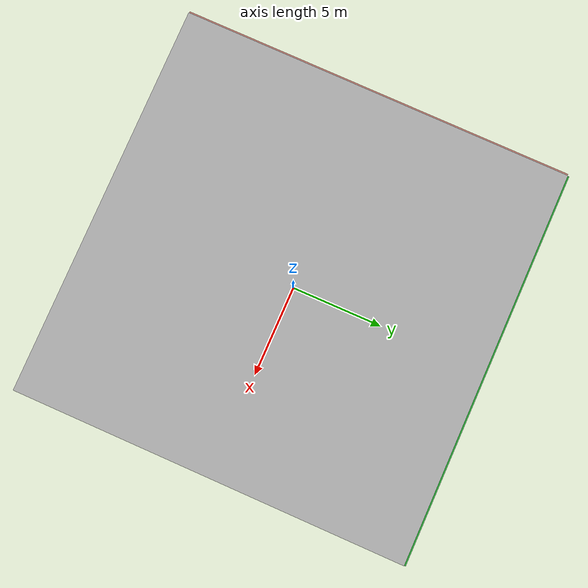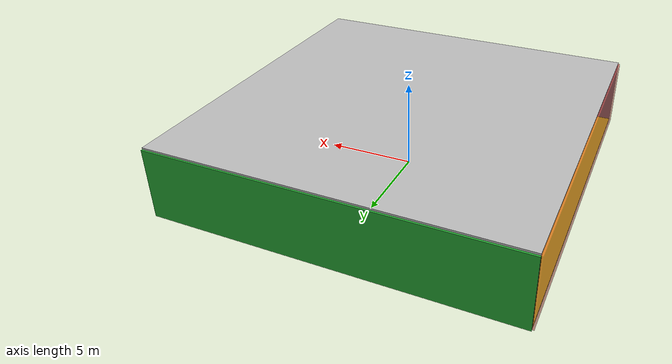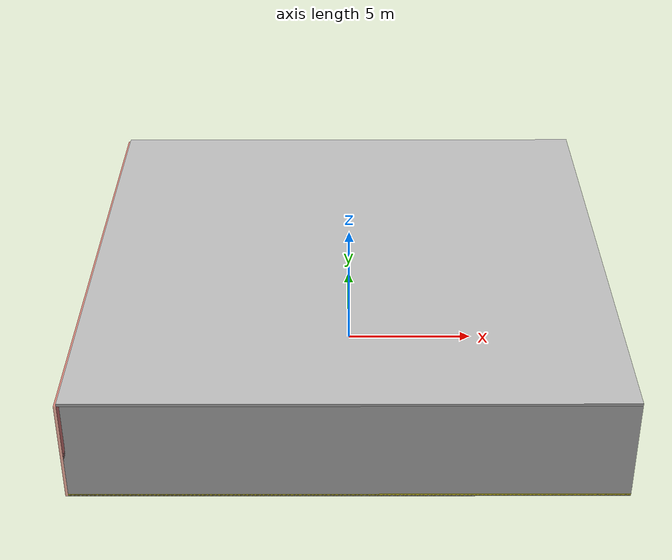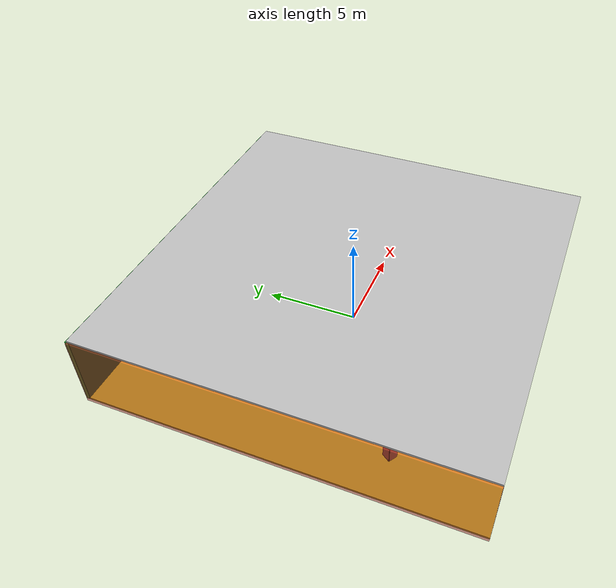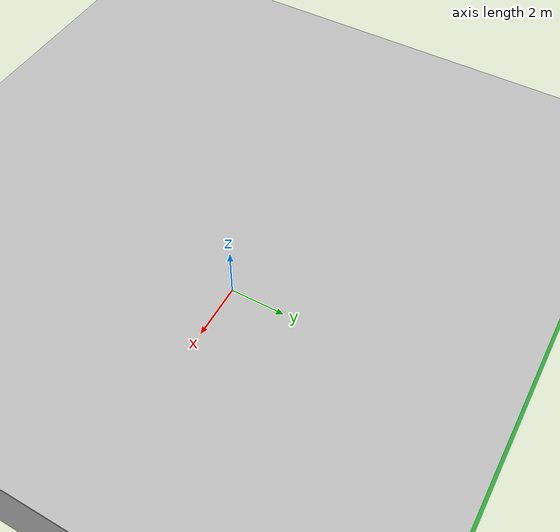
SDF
<sdf version="1.4">
 <world name="default">
  <physics type="ode">
   <max_step_size>0.001</max_step_size>
   <real_time_factor>1</real_time_factor>
   <real_time_update_rate>1000</real_time_update_rate>
   <gravity>0 0 -9.8</gravity>
  </physics>
  <scene><ambient>0.4 0.4 0.4 1</ambient><background>0.7 0.7 0.7 1</background><shadows>1</shadows></scene>
  <model name="Surrounding">
   <static>1</static>
   <link name="Ceiling">
    <collision name="Ceiling_Collision"><geometry><box><size>20 20 0.1</size></box></geometry></collision>
    <visual name="Ceiling_Visual">
     <geometry><box><size>20 20 0.1</size></box></geometry>
     <material>
      <script><uri>file://media/materials/scripts/gazebo.material</uri><name>Gazebo/JointAnchor</name></script>
     </material>
    </visual>
    <pose>0 0 4.05 0 0 0</pose>
   </link>
   <link name="Wall_South">
    <collision name="Wall_South_Collision">
     <geometry><box><size>20 0 4</size></box></geometry>
     <pose>0 0 2 0 -0 0</pose>
    </collision>
    <visual name="Wall_South_Visual">
     <pose>0 0 2 0 -0 0</pose>
     <geometry><box><size>20 0 4</size></box></geometry>
     <material>
      <script><uri>file://media/materials/scripts/gazebo.material</uri><name>Gazebo/Pioneer2Body</name></script>
     </material>
    </visual>
    <velocity_decay><linear>0</linear><angular>0</angular></velocity_decay>
    <pose>0 -10 0 0 -0 0</pose>
   </link>
   <link name="Wall_East">
    <collision name="Wall_21_Collision">
     <geometry><box><size>20 0 4</size></box></geometry>
     <pose>0 0 2 0 -0 0</pose>
    </collision>
    <visual name="Wall_21_Visual">
     <pose>0 0 2 0 -0 0</pose>
     <geometry><box><size>20 0 4</size></box></geometry>
     <material>
      <script><uri>file://media/materials/scripts/gazebo.material</uri><name>Gazebo/PioneerBody</name></script>
     </material>
    </visual>
    <velocity_decay><linear>0</linear><angular>0</angular></velocity_decay>
    <pose>10 0 0 0 -0 1.5708</pose>
   </link>
   <link name="Wall_North">
    <collision name="Wall_22_Collision">
     <geometry><box><size>20 0.2 4</size></box></geometry>
     <pose>0 0 2 0 -0 0</pose>
    </collision>
    <visual name="Wall_22_Visual">
     <pose>0 0 2 0 -0 0</pose>
     <geometry><box><size>20 0.2 4</size></box></geometry>
     <material>
      <script><uri>file://media/materials/scripts/gazebo.material</uri><name>Gazebo/GreenGlow</name></script>
     </material>
    </visual>
    <velocity_decay><linear>0</linear><angular>0</angular></velocity_decay>
    <pose>0 10 0 0 -0 0</pose>
   </link>
   <link name="Wall_West">
    <collision name="Wall_23_Collision">
     <geometry><box><size>20 0.2 4</size></box></geometry>
     <pose>0 0 2 0 -0 0</pose>
    </collision>
    <visual name="Wall_23_Visual">
     <pose>0 0 2 0 -0 0</pose>
     <geometry><box><size>20 0.2 4</size></box></geometry>
     <material>
      <script><uri>file://media/materials/scripts/gazebo.material</uri><name>Gazebo/RedTransparent</name></script>
     </material>
    </visual>
    <velocity_decay><linear>0</linear><angular>0</angular></velocity_decay>
    <pose>-10 0 0 0 0 -1.5708</pose>
   </link>
   <link name="Ground_link">
    <collision name="collision">
     <pose>0 0 .05 0 -0 0</pose>
     <geometry><box><size>20 20 0.1</size></box></geometry>
    </collision>
    <visual name="visual">
     <pose>0 0 .05 0 -0 0</pose>
     <geometry><box><size>20 20 0.1</size></box></geometry>
     <material>
      <script><uri>file://media/materials/scripts/gazebo.material</uri><name>Gazebo/Yellow</name></script>
     </material>
    </visual>
   </link>
   <static>1</static>
  </model>
  <spherical_coordinates>
   <surface_model>EARTH_WGS84</surface_model>
   <latitude_deg>0</latitude_deg>
   <longitude_deg>0</longitude_deg>
   <elevation>0</elevation>
   <heading_deg>0</heading_deg>
  </spherical_coordinates>
  <light name="lightball_0" type="diffuse">
   <diffuse>0.8 0.8 0.8 1</diffuse>
   <specular>0.2 0.2 0.2 1</specular>
   <attenuation>
    <range>100</range>
    <constant>0.7</constant>
    <linear>0.01</linear>
    <quadratic>0.001</quadratic>
   </attenuation>
   <direction>-0.5 0.1 -0.9</direction>
   <pose>2.163719059 -1.81493837682 0.697799438778 0 0 0</pose>
  </light>
  <light name="lightball_1" type="diffuse">
   <diffuse>0.8 0.8 0.8 1</diffuse>
   <specular>0.2 0.2 0.2 1</specular>
   <attenuation>
    <range>100</range>
    <constant>0.7</constant>
    <linear>0.01</linear>
    <quadratic>0.001</quadratic>
   </attenuation>
   <direction>-0.5 0.1 -0.9</direction>
   <pose>-7.39877486458 7.86696672139 2.11581130995 0 0 0</pose>
  </light>
  <light name="lightball_2" type="diffuse">
   <diffuse>0.8 0.8 0.8 1</diffuse>
   <specular>0.2 0.2 0.2 1</specular>
   <attenuation>
    <range>100</range>
    <constant>0.7</constant>
    <linear>0.01</linear>
    <quadratic>0.001</quadratic>
   </attenuation>
   <direction>-0.5 0.1 -0.9</direction>
   <pose>5.09041753415 9.66797379669 3.73896281615 0 0 0</pose>
  </light>
  <include><uri>model://cabinet</uri><pose>-7.73099094659 -4.83182520505 0 0 0 2.55663547834</pose></include>
  <include>
   <uri>model://textured_shapes</uri>
   <pose>-1.29040325138 1.18842055668 0 0 0 0.77644273493</pose>
  </include>
  <include><uri>model://cabinet</uri><pose>1.13102587884 4.31768997471 0 0 0 2.46978186635</pose></include>
  <include>
   <uri>model://construction_cone</uri>
   <pose>6.91536444854 0.870061667883 0 0 0 2.97372963649</pose>
  </include>
 </world>
</sdf>

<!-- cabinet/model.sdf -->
<sdf version="1.5">
  <model name="cabinet">
    <static>true</static>
    <link name="cabinet_bottom_plate">
      <inertial>
        <pose>0 0 -1 0 0 0</pose>
        <inertia>
          <ixx>2.050000</ixx>
          <ixy>0</ixy>
          <ixz>0</ixz>
          <iyy>2.050000</iyy>
          <iyz>0</iyz>
          <izz>2.050000</izz>
        </inertia>
        <mass>25.000000</mass>
      </inertial>
      <collision name="cabinet_bottom_plate_geom">
        <pose>0 0 0.010000 0 0 0</pose>
        <geometry>
          <box>
            <size>0.450000 0.450000 0.020000</size>
          </box>
        </geometry>
      </collision>
      <visual name="cabinet_bottom_plate_geom_visual">
        <pose>0 0 0.010000 0 0 0</pose>
        <geometry>
          <box>
            <size>0.450000 0.450000 0.020000</size>
          </box>
        </geometry>
        <material>
          <script>
            <uri>model://media/materials/scripts/gazebo.material</uri>
            <name>Gazebo/Wood</name>
          </script>
        </material>
      </visual>
      <collision name="cabinet_bottom_plate_geom_cabinet_back_plate">
        <pose>0.235000 0 0.510000 0 0 0</pose>
        <geometry>
          <box>
            <size>0.020000 0.450000 1.020000</size>
          </box>
        </geometry>
      </collision>
      <visual name="cabinet_bottom_plate_geom_cabinet_back_plate_visual">
        <pose>0.235000 0 0.510000 0 0 0</pose>
        <geometry>
          <box>
            <size>0.020000 0.450000 1.020000</size>
          </box>
        </geometry>
        <material>
          <script>
            <uri>model://media/materials/scripts/gazebo.material</uri>
            <name>Gazebo/Wood</name>
          </script>
        </material>
      </visual>
      <collision name="cabinet_bottom_plate_geom_cabinet_left_plate">
        <pose>0 0.235000 0.510000 0 0 0</pose>
        <geometry>
          <box>
            <size>0.450000 0.020000 1.020000</size>
          </box>
        </geometry>
      </collision>
      <visual name="cabinet_bottom_plate_geom_cabinet_left_plate_visual">
        <pose>0 0.235000 0.510000 0 0 0</pose>
        <geometry>
          <box>
            <size>0.450000 0.020000 1.020000</size>
          </box>
        </geometry>
        <material>
          <script>
            <uri>model://media/materials/scripts/gazebo.material</uri>
            <name>Gazebo/Wood</name>
          </script>
        </material>
      </visual>
      <collision name="cabinet_bottom_plate_geom_cabinet_middle_plate">
        <pose>0 0 0.510000 0 0 0</pose>
        <geometry>
          <box>
            <size>0.450000 0.450000 0.020000</size>
          </box>
        </geometry>
      </collision>
      <visual name="cabinet_bottom_plate_geom_cabinet_middle_plate_visual">
        <pose>0 0 0.510000 0 0 0</pose>
        <geometry>
          <box>
            <size>0.450000 0.450000 0.020000</size>
          </box>
        </geometry>
        <material>
          <script>
            <uri>model://media/materials/scripts/gazebo.material</uri>
            <name>Gazebo/Wood</name>
          </script>
        </material>
      </visual>
      <collision name="cabinet_bottom_plate_geom_cabinet_right_plate">
        <pose>0 -0.235000 0.510000 0 0 0</pose>
        <geometry>
          <box>
            <size>0.450000 0.020000 1.020000</size>
          </box>
        </geometry>
      </collision>
      <visual name="cabinet_bottom_plate_geom_cabinet_right_plate_visual">
        <pose>0 -0.235000 0.510000 0 0 0</pose>
        <geometry>
          <box>
            <size>0.450000 0.020000 1.020000</size>
          </box>
        </geometry>
        <material>
          <script>
            <uri>model://media/materials/scripts/gazebo.material</uri>
            <name>Gazebo/Wood</name>
          </script>
        </material>
      </visual>
      <collision name="cabinet_bottom_plate_geom_cabinet_top_plate">
        <pose>0 0 1.010000 0 0 0</pose>
        <geometry>
          <box>
            <size>0.450000 0.450000 0.020000</size>
          </box>
        </geometry>
      </collision>
      <visual name="cabinet_bottom_plate_geom_cabinet_top_plate_visual">
        <pose>0 0 1.010000 0 0 0</pose>
        <geometry>
          <box>
            <size>0.450000 0.450000 0.020000</size>
          </box>
        </geometry>
        <material>
          <script>
            <uri>model://media/materials/scripts/gazebo.material</uri>
            <name>Gazebo/Wood</name>
          </script>
        </material>
      </visual>
    </link>
  </model>
</sdf>

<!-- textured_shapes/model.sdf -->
<sdf version="1.6">
  <model name="textured_shapes">
    <pose>0 0 0.5 0 0 0</pose>
    <link name="box">
      <pose>0 -1.5 0 0 0 0</pose>
      <collision name="collision">
        <geometry>
          <box>
            <size>1 1 1</size>
          </box>
        </geometry>
      </collision>
      <visual name="visual">
        <geometry>
          <box>
            <size>1 1 1</size>
          </box>
        </geometry>
        <material>
          <script>
            <uri>model://../model_source/models/textured_shapes/materials/scripts</uri>
            <uri>model://../model_source/models/textured_shapes/materials/textures</uri>
            <name>TexturedShape/Squares</name>
          </script>
        </material>
      </visual>
    </link>
    <link name="sphere">
      <collision name="collision">
        <geometry>
          <sphere>
            <radius>0.5</radius>
          </sphere>
        </geometry>
      </collision>
      <visual name="visual">
        <geometry>
          <sphere>
            <radius>0.5</radius>
          </sphere>
        </geometry>
        <material>
          <script>
            <uri>model://../model_source/models/textured_shapes/materials/scripts</uri>
            <uri>model://../model_source/models/textured_shapes/materials/textures</uri>
            <name>TexturedShape/Squares</name>
          </script>
        </material>
      </visual>
    </link>
    <link name="cylinder">
      <pose>0 1.5 0 0 0 0</pose>
      <collision name="collision">
        <geometry>
          <cylinder>
            <radius>0.5</radius>
            <length>1</length>
          </cylinder>
        </geometry>
      </collision>
      <visual name="visual">
        <geometry>
          <cylinder>
            <radius>0.5</radius>
            <length>1</length>
          </cylinder>
        </geometry>
        <material>
          <script>
            <uri>model://../model_source/models/textured_shapes/materials/scripts</uri>
            <uri>model://../model_source/models/textured_shapes/materials/textures</uri>
            <name>TexturedShape/Squares</name>
          </script>
        </material>
      </visual>
    </link>
  </model>
</sdf>

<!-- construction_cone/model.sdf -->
<sdf version="1.5">
  <model name="Construction Cone">
    <link name="link">
      <collision name="collision">
        <geometry>
          <mesh>
            <scale>10 10 10</scale>
            <uri>file://isr-testbed/construction_cone/meshes/construction_cone.dae</uri>
          </mesh>
        </geometry>
      </collision>
      <visual name="visual">
        <geometry>
          <mesh>
            <scale>10 10 10</scale>
            <uri>file://isr-testbed/construction_cone/meshes/construction_cone.dae</uri>
          </mesh>
        </geometry>
      </visual>
    </link>
  </model>
</sdf>
